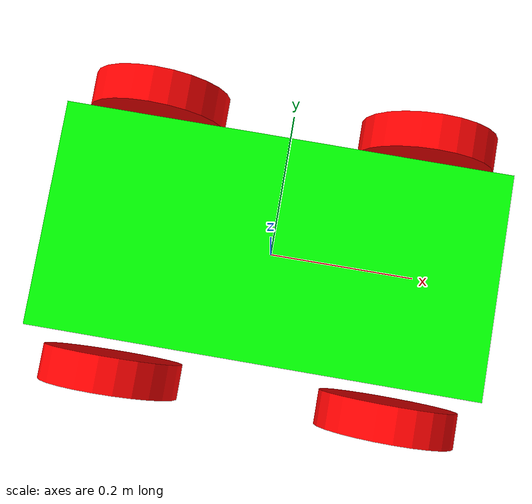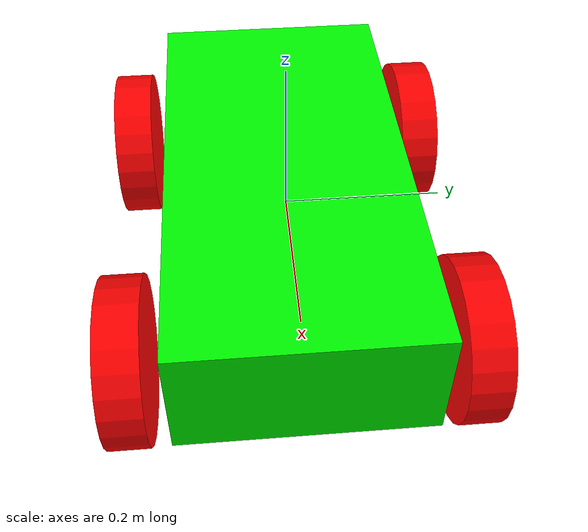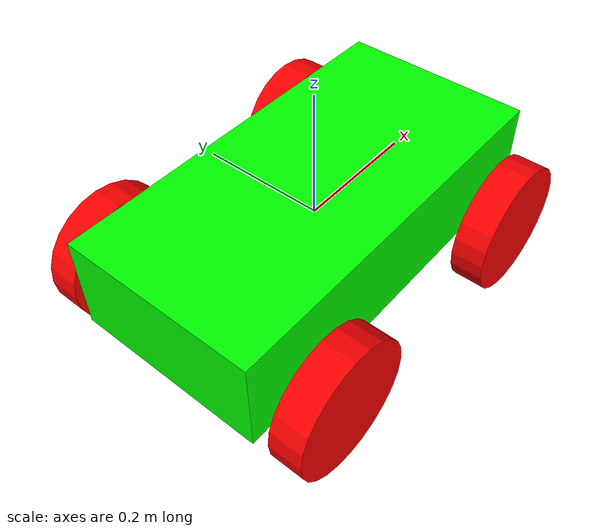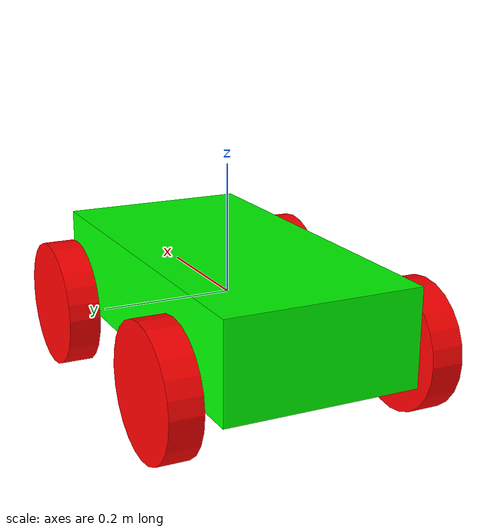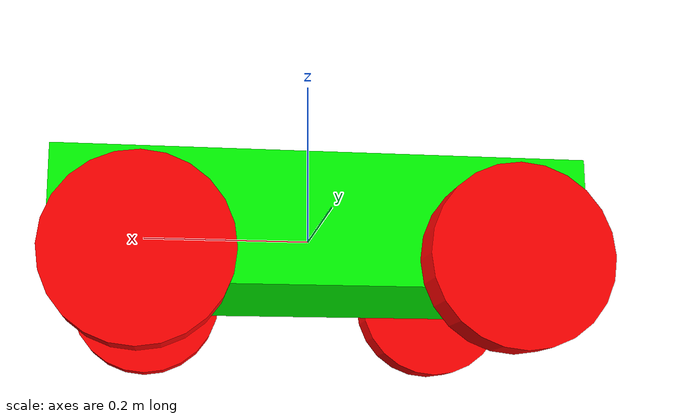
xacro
<?xml version="1.0"?>
<robot xmlns:xacro="http://www.ros.org/wiki/xacro">
    <xacro:include filename="colors.xacro" />

    <xacro:property name="base_width" value="0.3"/>
    <xacro:property name="base_length" value="0.6"/>
    <xacro:property name="base_height" value="0.15"/>

    <xacro:property name="wheel_radius" value="0.1" />
    <xacro:property name="wheel_length" value="0.05" />
    <xacro:property name="wheel_color_name" value="red" />
    <xacro:property name="wheel_color_rgb" value="1 0 0 1" />
    <xacro:property name="wheel_zoff" value="0.05"/>

    <xacro:macro name="box_link" params="name size color color_rgb mass mass_x mass_y mass_z" >
        <link name="${name}">
            <visual>
                <geometry>
                    <box size="${size}"/>
                    <!-- origin xyz="0.0 0.0"/ -->
                </geometry>

                <material name="${color}">
                    <color rgba="${color_rgb}"/>
                </material>
            </visual>
            <collision>
                <origin xyz="${mass_x/2} ${mass_y/2} ${mass_z/2}" rpy="0 0 0"/>
                <geometry>
                    <box size="${size}"/>
                </geometry>
            </collision>
            <xacro:inertial_box mass="${mass}" x="${mass_x}" y="${mass_y}" z="${mass_z}">
                <origin xyz="${mass_x} ${mass_y} ${mass_z}" rpy="0 0 0"/>
            </xacro:inertial_box>
        </link>
    </xacro:macro>

    <xacro:macro name="wheel" params="name mass">
        <link name="${name}">
            <visual>
                <geometry>
                    <cylinder radius="${wheel_radius}" length="${wheel_length}" />
                </geometry>
                <material name="${wheel_color_name}">
                    <color rgba="${wheel_color_rgb}"/>
                </material>
            </visual>
            <collision>
                <geometry>
                    <cylinder length="${wheel_length}" radius="${wheel_radius}" />/>
                </geometry>
                <material name="blue"/>
            </collision>
            <xacro:inertial_cylinder mass="${mass}" length="${wheel_length}" radius="${wheel_radius}">
                <origin xyz="0 0 0" rpy="0 0 0"/>
            </xacro:inertial_cylinder>
        </link>
    </xacro:macro>

    <xacro:macro name="wheel_joint" params="name parent child xyz ">
        <joint name="${name}" type="continuous">
            <parent link="${parent}" />
            <child link="${child}" />
            <origin xyz="${xyz}" rpy="${-pi/2} 0 0"/>
            <axis rpy="0 0 0" xyz="0 0 1"/>
        </joint>
    </xacro:macro>

    <!-- Robot Description -->

    <!-- link name="base_footprint"/ -->

    <xacro:box_link name="base_link" size="${base_length} ${base_width} ${base_height}"
        color="green" color_rgb="0 1 0 1"
        mass="0.5" mass_x="0.3" mass_y="0.15" mass_z="0.05"/>

   <!-- Robot Footprint -->
   <xacro:box_link name="base_footprint" size="0.0 0.0 0.0" color="green" color_rgb="0 1 0 1"
        mass="0.0" mass_x="0.0" mass_y="0.0" mass_z="0.0"/>

  <joint name="base_joint" type="fixed">
    <parent link="base_link"/>
    <child link="base_footprint"/>
    <origin xyz="0.0 0.0 ${-(wheel_radius+wheel_zoff)}" rpy="0 0 0"/>
  </joint>

    <xacro:wheel name="right_wheel_frontside" mass="0.1" />
    <xacro:wheel_joint name="base_link_right_wheel_frontside" parent="base_link"
        child="right_wheel_frontside" xyz="0.2 -0.2 ${-wheel_zoff}" />

    <xacro:wheel name="right_wheel_backside" mass="0.1" />
    <xacro:wheel_joint name="base_link_right_wheel_backside" parent="base_link"
        child="right_wheel_backside" xyz="-0.2 -0.2 ${-wheel_zoff}" />

    <xacro:wheel name="left_wheel_frontside" mass="0.1" />
    <xacro:wheel_joint name="base_link_left_wheel_frontside" parent="base_link"
        child="left_wheel_frontside" xyz="0.2 0.2 ${-wheel_zoff}" />

    <xacro:wheel name="left_wheel_backside" mass="0.1" />
    <xacro:wheel_joint name="base_link_left_wheel_backside" parent="base_link"
        child="left_wheel_backside" xyz="-0.2 0.2 ${-wheel_zoff}" />

    <!-- Gazebo Colors -->
    <gazebo reference="base_link">
        <material>Gazebo/Green</material>
    </gazebo>
    <gazebo reference="right_wheel_frontside">
        <material>Gazebo/Red</material>
    </gazebo>
    <gazebo reference="right_wheel_backside">
        <material>Gazebo/Red</material>
    </gazebo>
    <gazebo reference="left_wheel_frontside">
        <material>Gazebo/Red</material>
    </gazebo>
    <gazebo reference="left_wheel_backside">
        <material>Gazebo/Red</material>
    </gazebo>

</robot>
